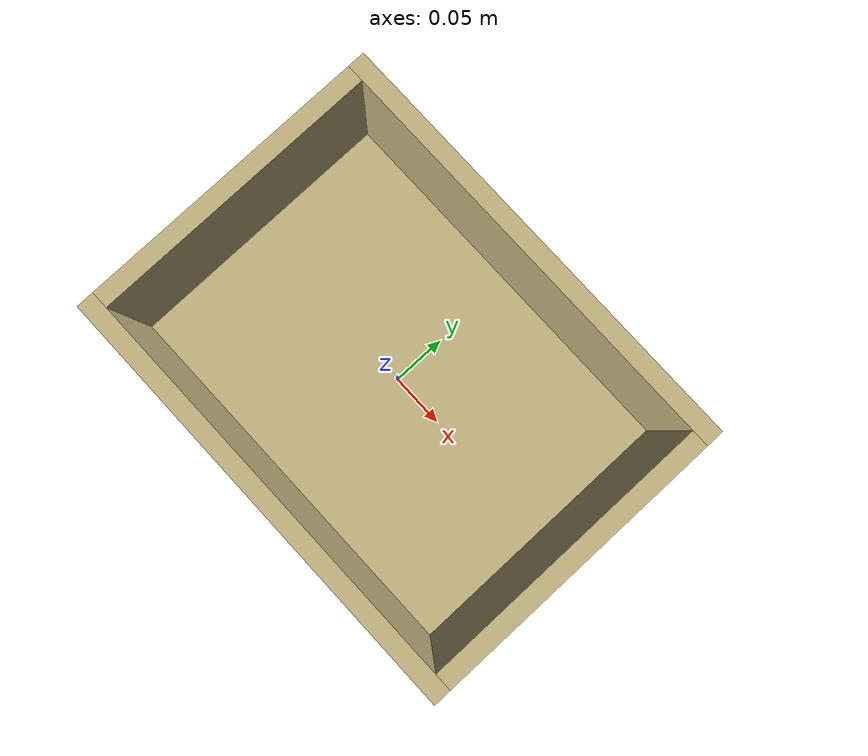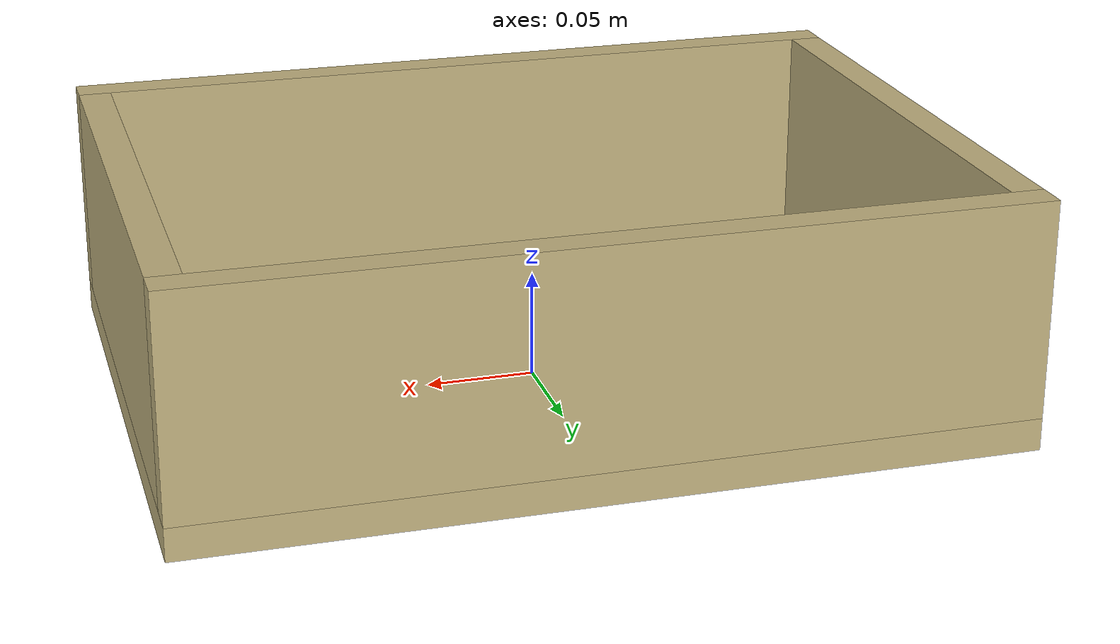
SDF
<sdf version="1.7">
  <model name="basket">
    <static>true</static>

    <link name="basket_link">

      <!-- Bottom -->
      <collision name="bottom_col">
        <pose>0 0 0.0075 0 0 0</pose>
        <geometry>
          <box><size>0.38 0.28 0.015</size></box>
        </geometry>
      </collision>

      <visual name="bottom_vis">
        <pose>0 0 0.0075 0 0 0</pose>
        <geometry>
          <box><size>0.38 0.28 0.015</size></box>
        </geometry>
        <material>
          <ambient>0.76 0.70 0.50 1</ambient>
          <diffuse>0.76 0.70 0.50 1</diffuse>
        </material>
      </visual>

      <!-- Wall Z = 0.065 -->

      <collision name="wall_x_pos_col">
        <pose>0.1825 0 0.065 0 0 0</pose>
        <geometry>
          <box><size>0.015 0.25 0.1</size></box>
        </geometry>
      </collision>

      <visual name="wall_x_pos_vis">
        <pose>0.1825 0 0.065 0 0 0</pose>
        <geometry>
          <box><size>0.015 0.25 0.1</size></box>
        </geometry>
        <material>
          <ambient>0.76 0.70 0.50 1</ambient>
          <diffuse>0.76 0.70 0.50 1</diffuse>
        </material>
      </visual>

      <collision name="wall_x_neg_col">
        <pose>-0.1825 0 0.065 0 0 0</pose>
        <geometry>
          <box><size>0.015 0.25 0.1</size></box>
        </geometry>
      </collision>

      <visual name="wall_x_neg_vis">
        <pose>-0.1825 0 0.065 0 0 0</pose>
        <geometry>
          <box><size>0.015 0.25 0.1</size></box>
        </geometry>
        <material>
          <ambient>0.76 0.70 0.50 1</ambient>
          <diffuse>0.76 0.70 0.50 1</diffuse>
        </material>
      </visual>

      <collision name="wall_y_pos_col">
        <pose>0 0.1325 0.065 0 0 0</pose>
        <geometry>
          <box><size>0.38 0.015 0.1</size></box>
        </geometry>
      </collision>

      <visual name="wall_y_pos_vis">
        <pose>0 0.1325 0.065 0 0 0</pose>
        <geometry>
          <box><size>0.38 0.015 0.1</size></box>
        </geometry>
        <material>
          <ambient>0.76 0.70 0.50 1</ambient>
          <diffuse>0.76 0.70 0.50 1</diffuse>
        </material>
      </visual>

      <collision name="wall_y_neg_col">
        <pose>0 -0.1325 0.065 0 0 0</pose>
        <geometry>
          <box><size>0.38 0.015 0.1</size></box>
        </geometry>
      </collision>

      <visual name="wall_y_neg_vis">
        <pose>0 -0.1325 0.065 0 0 0</pose>
        <geometry>
          <box><size>0.38 0.015 0.1</size></box>
        </geometry>
        <material>
          <ambient>0.76 0.70 0.50 1</ambient>
          <diffuse>0.76 0.70 0.50 1</diffuse>
        </material>
      </visual>

    </link>
  </model>
</sdf>
